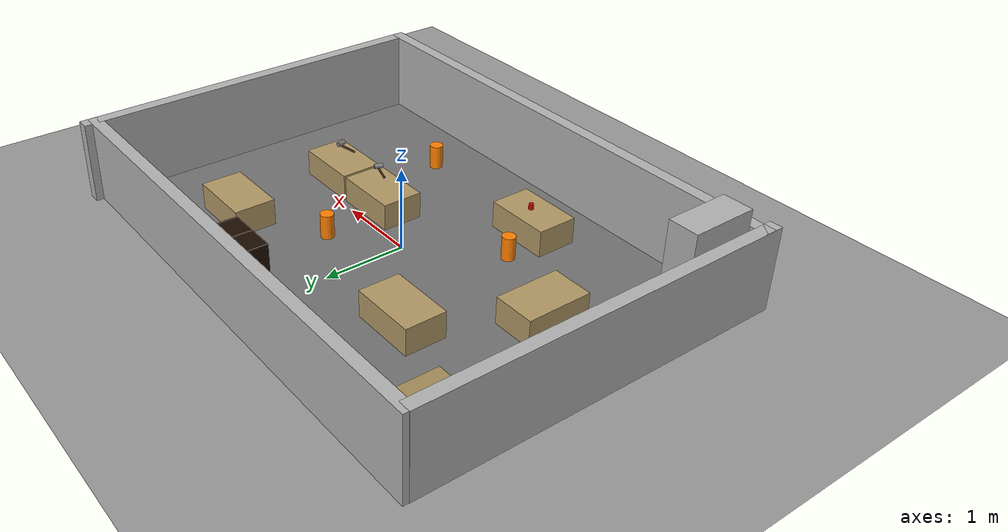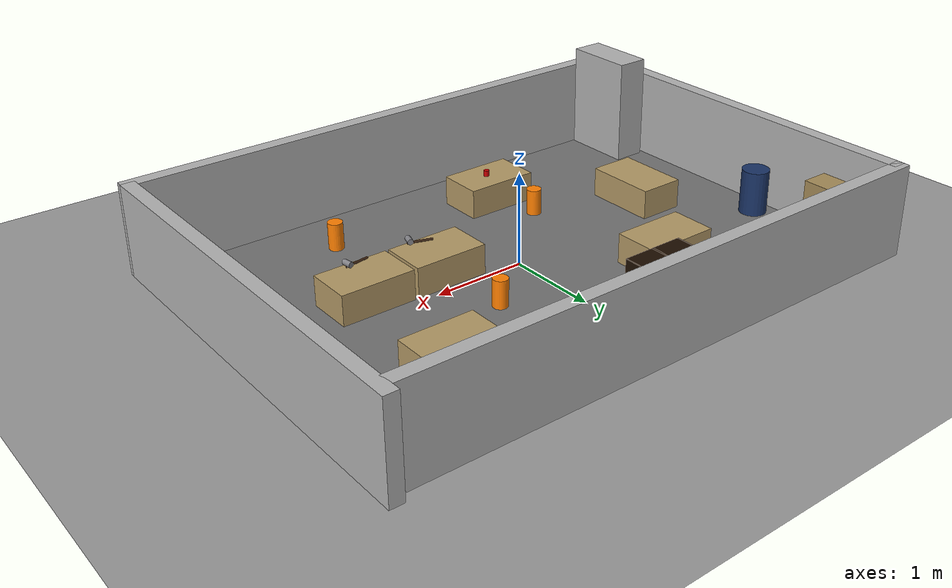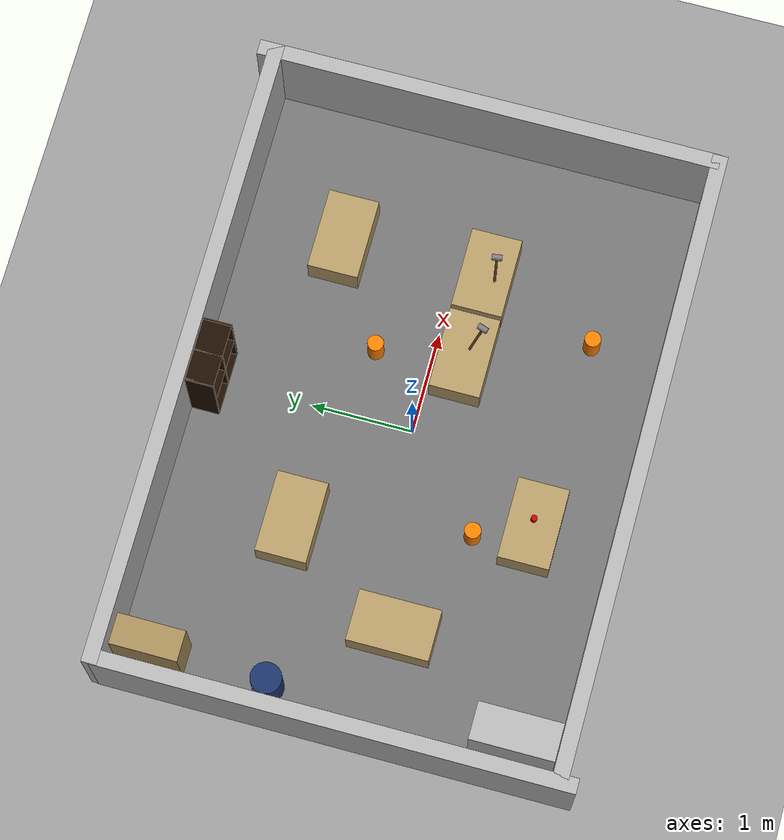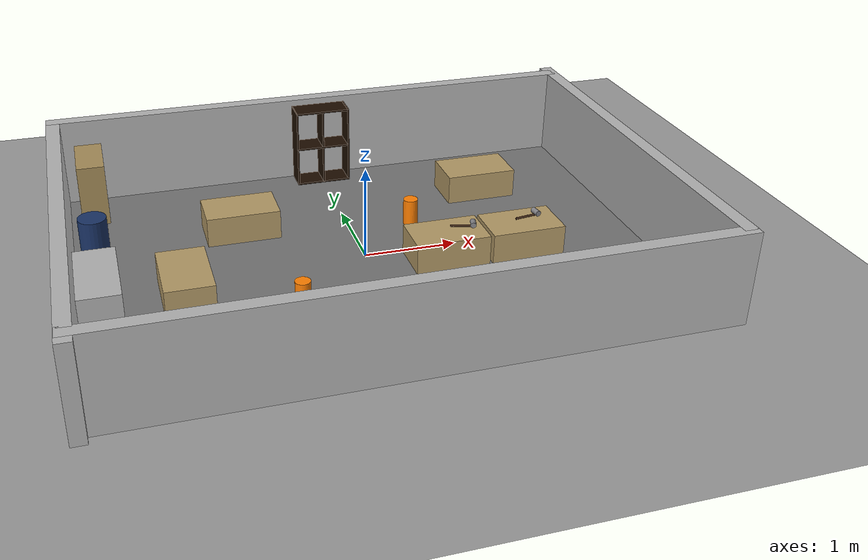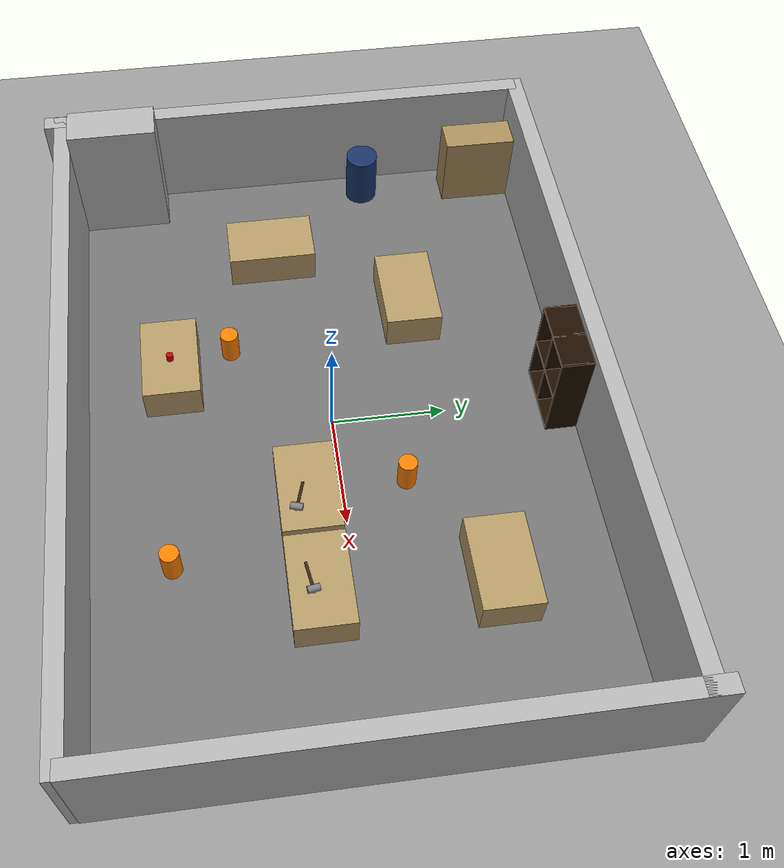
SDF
<?xml version="1.0" ?>
<sdf version="1.5">
  <world name="workshop">
     <physics name='default_physics' default='0' type='ode'>
      <gravity>0 0 -9.8066</gravity>
      <ode>
        <solver>
          <type>quick</type>
          <iters>10</iters>
          <sor>1.3</sor>
          <use_dynamic_moi_rescaling>0</use_dynamic_moi_rescaling>
        </solver>
        <constraints>
          <cfm>0</cfm>
          <erp>0.2</erp>
          <contact_max_correcting_vel>100</contact_max_correcting_vel>
          <contact_surface_layer>0.001</contact_surface_layer>
        </constraints>
      </ode>
      <max_step_size>0.004</max_step_size>
      <real_time_factor>1</real_time_factor>
      <real_time_update_rate>250</real_time_update_rate>
      <magnetic_field>6.0e-6 2.3e-5 -4.2e-5</magnetic_field>
    </physics>

    <light type="directional" name="sun">
      <cast_shadows>false</cast_shadows>
      <pose>0 0 10 0 0 0</pose>
      <diffuse>0.8 0.8 0.8 1</diffuse>
      <specular>0.2 0.2 0.2 1</specular>
      <attenuation>
        <range>1000</range>
        <constant>0.9</constant>
        <linear>0.01</linear>
        <quadratic>0.001</quadratic>
      </attenuation>
      <direction>-0.5 0.1 -0.9</direction>
    </light>

    <!-- Ground plane (primitive replacement of model://ground_plane_residential) -->
    <model name='ground_plane_residential'>
      <static>1</static>
      <link name='link'>
        <collision name='collision'>
          <geometry>
            <plane>
              <normal>0 0 1</normal>
              <size>50 50</size>
            </plane>
          </geometry>
          <surface>
            <friction>
              <ode>
                <mu>1</mu>
                <mu2>1</mu2>
              </ode>
            </friction>
          </surface>
        </collision>
        <visual name='visual'>
          <geometry>
            <plane>
              <normal>0 0 1</normal>
              <size>50 50</size>
            </plane>
          </geometry>
          <material>
            <ambient>0.6 0.6 0.6 1</ambient>
            <diffuse>0.6 0.6 0.6 1</diffuse>
            <specular>0.05 0.05 0.05 1</specular>
          </material>
        </visual>
      </link>
    </model>

    <!-- Workshop environment (primitive replacement of model://Workshop) -->
    <model name='Workshop'>
      <static>1</static>
      <pose>0 0 0 0 0 0</pose>
      <link name='structure'>
        <!-- floor: approx 6.1 x 4.38 -->
        <collision name='floor_col'>
          <pose>0 0 0.0065 0 0 0</pose>
          <geometry>
            <box>
              <size>6.099 4.38 0.013</size>
            </box>
          </geometry>
        </collision>
        <visual name='floor_vis'>
          <pose>0 0 0.0065 0 0 0</pose>
          <geometry>
            <box>
              <size>6.099 4.38 0.013</size>
            </box>
          </geometry>
          <material>
            <ambient>0.35 0.35 0.35 1</ambient>
            <diffuse>0.45 0.45 0.45 1</diffuse>
            <specular>0.05 0.05 0.05 1</specular>
          </material>
        </visual>

        <!-- walls: simple perimeter, thickness 0.15, height 1.0 -->
        <collision name='wall_n_col'>
          <pose>0 2.19 0.5 0 0 0</pose>
          <geometry>
            <box>
              <size>6.26 0.15 1</size>
            </box>
          </geometry>
        </collision>
        <visual name='wall_n_vis'>
          <pose>0 2.19 0.5 0 0 0</pose>
          <geometry>
            <box>
              <size>6.26 0.15 1</size>
            </box>
          </geometry>
          <material>
            <ambient>0.7 0.7 0.7 1</ambient>
            <diffuse>0.7 0.7 0.7 1</diffuse>
            <specular>0.1 0.1 0.1 1</specular>
          </material>
        </visual>

        <collision name='wall_s_col'>
          <pose>-0.8 -2.19 0.5 0 0 0</pose>
          <geometry>
            <box>
              <size>4.521 0.15 1</size>
            </box>
          </geometry>
        </collision>
        <visual name='wall_s_vis'>
          <pose>0 -2.19 0.5 0 0 0</pose>
          <geometry>
            <box>
              <size>6.26 0.15 1</size>
            </box>
          </geometry>
          <material>
            <ambient>0.7 0.7 0.7 1</ambient>
            <diffuse>0.7 0.7 0.7 1</diffuse>
            <specular>0.1 0.1 0.1 1</specular>
          </material>
        </visual>

        <collision name='wall_e_col'>
          <pose>3.05 0.22 0.5 0 0 -1.5708</pose>
          <geometry>
            <box>
              <size>4.199944 0.15 1</size>
            </box>
          </geometry>
        </collision>
        <visual name='wall_e_vis'>
          <pose>3.06 0.08 0.5 0 0 -1.5708</pose>
          <geometry>
            <box>
              <size>4.557060 0.15 1</size>
            </box>
          </geometry>
          <material>
            <ambient>0.7 0.7 0.7 1</ambient>
            <diffuse>0.7 0.7 0.7 1</diffuse>
            <specular>0.1 0.1 0.1 1</specular>
          </material>
        </visual>

        <collision name='wall_w_col'>
          <pose>-3.06 -0.08 0.5 0 0 -1.5708</pose>
          <geometry>
            <box>
              <size>4.557060 0.15 1</size>
            </box>
          </geometry>
        </collision>
        <visual name='wall_w_vis'>
          <pose>-3.06 -0.08 0.5 0 0 -1.5708</pose>
          <geometry>
            <box>
              <size>4.557060 0.15 1</size>
            </box>
          </geometry>
          <material>
            <ambient>0.7 0.7 0.7 1</ambient>
            <diffuse>0.7 0.7 0.7 1</diffuse>
            <specular>0.1 0.1 0.1 1</specular>
          </material>
        </visual>
      </link>
    </model>

    <!-- Box primitives: dimensions inferred from name (cm -> m), height=0.15 -->
    <model name='Box_15x30'>
      <static>1</static>
      <pose>-1.936710 -0.343286 0.013 0 0 -1.57</pose>
      <link name='link'>
        <collision name='col'>
          <pose>0 0 0.075 0 0 0</pose>
          <geometry><box><size>0.8 0.5 0.5</size></box></geometry>
        </collision>
        <visual name='vis'>
          <pose>0 0 0.075 0 0 0</pose>
          <geometry><box><size>0.8 0.5 0.5</size></box></geometry>
          <material><ambient>0.6 0.5 0.35 1</ambient><diffuse>0.7 0.6 0.4 1</diffuse><specular>0.05 0.05 0.05 1</specular></material>
        </visual>
      </link>
    </model>

    <model name='Box_33x15_1'>
      <static>1</static>
      <pose>1.636 -0.3 0.013 0 0 0</pose>
      <link name='link'>
        <collision name='col'>
          <pose>0 0 0.075 0 0 0</pose>
          <geometry><box><size>0.8 0.5 0.5</size></box></geometry>
        </collision>
        <visual name='vis'>
          <pose>0 0 0.075 0 0 0</pose>
          <geometry><box><size>0.8 0.5 0.5</size></box></geometry>
          <material><ambient>0.6 0.5 0.35 1</ambient><diffuse>0.7 0.6 0.4 1</diffuse><specular>0.05 0.05 0.05 1</specular></material>
        </visual>
      </link>
    </model>

    <model name='Box_33x15_2'>
      <static>1</static>
      <pose>0.8 -0.3 0.013 0 0 0</pose>
      <link name='link'>
        <collision name='col'>
          <pose>0 0 0.075 0 0 0</pose>
          <geometry><box><size>0.8 0.5 0.5</size></box></geometry>
        </collision>
        <visual name='vis'>
          <pose>0 0 0.075 0 0 0</pose>
          <geometry><box><size>0.8 0.5 0.5</size></box></geometry>
          <material><ambient>0.6 0.5 0.35 1</ambient><diffuse>0.7 0.6 0.4 1</diffuse><specular>0.05 0.05 0.05 1</specular></material>
        </visual>
      </link>
    </model>

    <model name='Box_36x15W'>
      <static>1</static>
      <pose>1.658951 1.141109 0.013 0 0 0</pose>
      <link name='link'>
        <collision name='col'>
          <pose>0 0 0.075 0 0 0</pose>
          <geometry><box><size>0.8 0.5 0.5</size></box></geometry>
        </collision>
        <visual name='vis'>
          <pose>0 0 0.075 0 0 0</pose>
          <geometry><box><size>0.8 0.5 0.5</size></box></geometry>
          <material><ambient>0.6 0.5 0.35 1</ambient><diffuse>0.7 0.6 0.4 1</diffuse><specular>0.05 0.05 0.05 1</specular></material>
        </visual>
      </link>
    </model>

    <model name='Box_24x15M'>
      <static>1</static>
      <pose>-0.653226 -1.356719 0.013 0 0 0</pose>
      <link name='link'>
        <collision name='col'>
          <pose>0 0 0.075 0 0 0</pose>
          <geometry><box><size>0.8 0.5 0.5</size></box></geometry>
        </collision>
        <visual name='vis'>
          <pose>0 0 0.075 0 0 0</pose>
          <geometry><box><size>0.8 0.5 0.5</size></box></geometry>
          <material><ambient>0.6 0.5 0.35 1</ambient><diffuse>0.7 0.6 0.4 1</diffuse><specular>0.05 0.05 0.05 1</specular></material>
        </visual>
      </link>
    </model>

    <model name='Box_24x15W'>
      <static>1</static>
      <pose>-1.184366 0.857670 0.013 0 0 0</pose>
      <link name='link'>
        <collision name='col'>
          <pose>0 0 0.075 0 0 0</pose>
          <geometry><box><size>0.8 0.5 0.5</size></box></geometry>
        </collision>
        <visual name='vis'>
          <pose>0 0 0.075 0 0 0</pose>
          <geometry><box><size>0.8 0.5 0.5</size></box></geometry>
          <material><ambient>0.6 0.5 0.35 1</ambient><diffuse>0.7 0.6 0.4 1</diffuse><specular>0.05 0.05 0.05 1</specular></material>
        </visual>
      </link>
    </model>

    <!-- 6 Cube Storage (primitive shelf with 6 compartments) -->
    <model name='6_Cube_StorageE'>
      <static>1</static>
      <pose>0 1.986729 0.013002 0 0 3.14</pose>
      <link name='shelf'>
        <!-- dims: width=0.616 depth=0.296 height=0.915, thickness=0.02 -->
        <collision name='back_col'>
          <pose>0 -0.148 0.4575 0 0 0</pose>
          <geometry><box><size>0.616 0.02 0.915</size></box></geometry>
        </collision>
        <visual name='back_vis'>
          <pose>0 -0.148 0.4575 0 0 0</pose>
          <geometry><box><size>0.616 0.02 0.915</size></box></geometry>
          <material><ambient>0.11 0.05 0 1</ambient><diffuse>0.11 0.05 0 1</diffuse><specular>0.05 0.05 0.05 1</specular></material>
        </visual>

        <collision name='left_side_col'>
          <pose>-0.308 0 0.4575 0 0 0</pose>
          <geometry><box><size>0.02 0.296 0.915</size></box></geometry>
        </collision>
        <visual name='left_side_vis'>
          <pose>-0.308 0 0.4575 0 0 0</pose>
          <geometry><box><size>0.02 0.296 0.915</size></box></geometry>
          <material><ambient>0.11 0.05 0 1</ambient><diffuse>0.11 0.05 0 1</diffuse><specular>0.05 0.05 0.05 1</specular></material>
        </visual>

        <collision name='right_side_col'>
          <pose>0.308 0 0.4575 0 0 0</pose>
          <geometry><box><size>0.02 0.296 0.915</size></box></geometry>
        </collision>
        <visual name='right_side_vis'>
          <pose>0.308 0 0.4575 0 0 0</pose>
          <geometry><box><size>0.02 0.296 0.915</size></box></geometry>
          <material><ambient>0.11 0.05 0 1</ambient><diffuse>0.11 0.05 0 1</diffuse><specular>0.05 0.05 0.05 1</specular></material>
        </visual>

        <collision name='bottom_col'>
          <pose>0 0 0.01 0 0 0</pose>
          <geometry><box><size>0.616 0.296 0.02</size></box></geometry>
        </collision>
        <visual name='bottom_vis'>
          <pose>0 0 0.01 0 0 0</pose>
          <geometry><box><size>0.616 0.296 0.02</size></box></geometry>
          <material><ambient>0.11 0.05 0 1</ambient><diffuse>0.11 0.05 0 1</diffuse><specular>0.05 0.05 0.05 1</specular></material>
        </visual>

        <collision name='mid_col'>
          <pose>0 0 0.4575 0 0 0</pose>
          <geometry><box><size>0.616 0.296 0.02</size></box></geometry>
        </collision>
        <visual name='mid_vis'>
          <pose>0 0 0.4575 0 0 0</pose>
          <geometry><box><size>0.616 0.296 0.02</size></box></geometry>
          <material><ambient>0.11 0.05 0 1</ambient><diffuse>0.11 0.05 0 1</diffuse><specular>0.05 0.05 0.05 1</specular></material>
        </visual>

        <collision name='top_col'>
          <pose>0 0 0.905 0 0 0</pose>
          <geometry><box><size>0.616 0.296 0.02</size></box></geometry>
        </collision>
        <visual name='top_vis'>
          <pose>0 0 0.905 0 0 0</pose>
          <geometry><box><size>0.616 0.296 0.02</size></box></geometry>
          <material><ambient>0.11 0.05 0 1</ambient><diffuse>0.11 0.05 0 1</diffuse><specular>0.05 0.05 0.05 1</specular></material>
        </visual>

        <!-- center divider (2 columns) -->
        <collision name='divider_col'>
          <pose>0 0 0.4575 0 0 0</pose>
          <geometry><box><size>0.02 0.296 0.915</size></box></geometry>
        </collision>
        <visual name='divider_vis'>
          <pose>0 0 0.4575 0 0 0</pose>
          <geometry><box><size>0.02 0.296 0.915</size></box></geometry>
          <material><ambient>0.11 0.05 0 1</ambient><diffuse>0.11 0.05 0 1</diffuse><specular>0.05 0.05 0.05 1</specular></material>
        </visual>
      </link>
    </model>

    <!-- Wire shelf (primitive replacement) -->
    <model name='Wire_Shelf'>
      <static>1</static>
      <pose>-2.755265 -1.706117 0.001995 0 0 -1.570</pose>
      <link name='link'>
        <collision name='col'>
          <pose>0 0 0.6 0 0 0</pose>
          <geometry><box><size>0.8 0.36 1.2</size></box></geometry>
        </collision>
        <visual name='vis'>
          <pose>0 0 0.6 0 0 0</pose>
          <geometry><box><size>0.8 0.36 1.2</size></box></geometry>
          <material><ambient>0.7 0.7 0.7 1</ambient><diffuse>0.7 0.7 0.7 1</diffuse><specular>0.2 0.2 0.2 1</specular></material>
        </visual>
      </link>
    </model>

    <!-- Wall cabinet (primitive replacement) -->
    <model name='Wall_Cabinet_Coin_24x30W'>
      <static>1</static>
      <pose>-2.710050 1.858030 0.013 0 0 -1.574973</pose>
      <link name='link'>
        <collision name='col'>
          <pose>0 0 0.35 0 0 0</pose>
          <geometry><box><size>0.8 0.3 0.7</size></box></geometry>
        </collision>
        <visual name='vis'>
          <pose>0 0 0.35 0 0 0</pose>
          <geometry><box><size>0.8 0.3 0.7</size></box></geometry>
          <material><ambient>0.55 0.45 0.3 1</ambient><diffuse>0.65 0.55 0.35 1</diffuse><specular>0.05 0.05 0.05 1</specular></material>
        </visual>
      </link>
    </model>

    <model name='coca_cola'>
      <static>0</static>
      <pose>-0.62 -1.35 0.342315 -0.000022 -0.000010 0.023819</pose>
      <link name='link'>
        <inertial>
          <mass>0.35</mass>
          <inertia>
            <ixx>0.0005</ixx>
            <ixy>0</ixy>
            <ixz>0</ixz>
            <iyy>0.0005</iyy>
            <iyz>0</iyz>
            <izz>0.0003</izz>
          </inertia>
        </inertial>
        <collision name='col'>
          <geometry><cylinder><radius>0.03</radius><length>0.12</length></cylinder></geometry>
        </collision>
        <visual name='vis'>
          <geometry><cylinder><radius>0.03</radius><length>0.12</length></cylinder></geometry>
          <material><ambient>0.5 0 0 1</ambient><diffuse>0.8 0 0 1</diffuse><specular>0.05 0.05 0.05 1</specular></material>
        </visual>
      </link>
    </model>

    <model name='construction_cone_small_1'>
      <static>1</static>
      <pose>0.68 0.55 0.015644 0.000314 -0.010301 0.004754</pose>
      <link name='link'>
        <collision name='col'>
          <pose>0 0 0.15 0 0 0</pose>
          <geometry><cylinder><radius>0.08</radius><length>0.30</length></cylinder></geometry>
        </collision>
        <visual name='vis'>
          <pose>0 0 0.15 0 0 0</pose>
          <geometry><cylinder><radius>0.08</radius><length>0.30</length></cylinder></geometry>
          <material><ambient>0.8 0.4 0 1</ambient><diffuse>1 0.5 0 1</diffuse><specular>0.05 0.05 0.05 1</specular></material>
        </visual>
      </link>
    </model>

    <model name='construction_cone_small_2'>
      <static>1</static>
      <pose>1.26 -1.45 0.01299 0 0 0.000034</pose>
      <link name='link'>
        <collision name='col'>
          <pose>0 0 0.15 0 0 0</pose>
          <geometry><cylinder><radius>0.08</radius><length>0.30</length></cylinder></geometry>
        </collision>
        <visual name='vis'>
          <pose>0 0 0.15 0 0 0</pose>
          <geometry><cylinder><radius>0.08</radius><length>0.30</length></cylinder></geometry>
          <material><ambient>0.8 0.4 0 1</ambient><diffuse>1 0.5 0 1</diffuse><specular>0.05 0.05 0.05 1</specular></material>
        </visual>
      </link>
    </model>

    <model name='construction_cone_small_3'>
      <static>1</static>
      <pose>-0.86 -0.82 0.00 0 0 0</pose>
      <link name='link'>
        <collision name='col'>
          <pose>0 0 0.15 0 0 0</pose>
          <geometry><cylinder><radius>0.08</radius><length>0.30</length></cylinder></geometry>
        </collision>
        <visual name='vis'>
          <pose>0 0 0.15 0 0 0</pose>
          <geometry><cylinder><radius>0.08</radius><length>0.30</length></cylinder></geometry>
          <material><ambient>0.8 0.4 0 1</ambient><diffuse>1 0.5 0 1</diffuse><specular>0.05 0.05 0.05 1</specular></material>
        </visual>
      </link>
    </model>

    <model name='trash_bin'>
      <static>1</static>
      <pose>-2.756142 0.652103 0.012998 0 0.000012 -0.001068</pose>
      <link name='link'>
        <collision name='col'>
          <pose>0 0 0.25 0 0 0</pose>
          <geometry><cylinder><radius>0.15</radius><length>0.5</length></cylinder></geometry>
        </collision>
        <visual name='vis'>
          <pose>0 0 0.25 0 0 0</pose>
          <geometry><cylinder><radius>0.15</radius><length>0.5</length></cylinder></geometry>
          <material><ambient>0.05 0.1 0.2 1</ambient><diffuse>0.1 0.2 0.4 1</diffuse><specular>0.1 0.1 0.1 1</specular></material>
        </visual>
      </link>
    </model>

    <!-- Hammers: two perpendicular cylinders, pose preserved -->
    <model name='hammer_pein_1'>
      <static>0</static>
      <pose>1.66 -0.38 0.425198 0 0 0.153326</pose>
      <link name='link'>
        <inertial>
          <mass>0.5</mass>
          <inertia>
            <ixx>0.002</ixx>
            <ixy>0</ixy>
            <ixz>0</ixz>
            <iyy>0.002</iyy>
            <iyz>0</iyz>
            <izz>0.001</izz>
          </inertia>
        </inertial>
        <!-- handle along X -->
        <collision name='handle_col'>
          <pose>0 0 0 0 1.5708 0</pose>
          <geometry><cylinder><radius>0.012</radius><length>0.26</length></cylinder></geometry>
        </collision>
        <visual name='handle_vis'>
          <pose>0 0 0 0 1.5708 0</pose>
          <geometry><cylinder><radius>0.012</radius><length>0.26</length></cylinder></geometry>
          <material><ambient>0.2 0.12 0.05 1</ambient><diffuse>0.25 0.15 0.08 1</diffuse><specular>0.02 0.02 0.02 1</specular></material>
        </visual>
        <!-- head along Y -->
        <collision name='head_col'>
          <pose>0.11 0 0.03 1.5708 0 0</pose>
          <geometry><cylinder><radius>0.03</radius><length>0.10</length></cylinder></geometry>
        </collision>
        <visual name='head_vis'>
          <pose>0.11 0 0.03 1.5708 0 0</pose>
          <geometry><cylinder><radius>0.03</radius><length>0.10</length></cylinder></geometry>
          <material><ambient>0.3 0.3 0.32 1</ambient><diffuse>0.5 0.5 0.52 1</diffuse><specular>0.2 0.2 0.2 1</specular></material>
        </visual>
      </link>
    </model>

    <model name='hammer_pein_2'>
      <static>0</static>
      <pose>0.94 -0.38 0.416818 0 0 -0.310473</pose>
      <link name='link'>
        <inertial>
          <mass>0.5</mass>
          <inertia>
            <ixx>0.002</ixx>
            <ixy>0</ixy>
            <ixz>0</ixz>
            <iyy>0.002</iyy>
            <iyz>0</iyz>
            <izz>0.001</izz>
          </inertia>
        </inertial>
        <collision name='handle_col'>
          <pose>0 0 0 0 1.5708 0</pose>
          <geometry><cylinder><radius>0.012</radius><length>0.26</length></cylinder></geometry>
        </collision>
        <visual name='handle_vis'>
          <pose>0 0 0 0 1.5708 0</pose>
          <geometry><cylinder><radius>0.012</radius><length>0.26</length></cylinder></geometry>
          <material><ambient>0.2 0.12 0.05 1</ambient><diffuse>0.25 0.15 0.08 1</diffuse><specular>0.02 0.02 0.02 1</specular></material>
        </visual>
        <collision name='head_col'>
          <pose>0.11 0 0.03 1.5708 0 0</pose>
          <geometry><cylinder><radius>0.03</radius><length>0.10</length></cylinder></geometry>
        </collision>
        <visual name='head_vis'>
          <pose>0.11 0 0.03 1.5708 0 0</pose>
          <geometry><cylinder><radius>0.03</radius><length>0.10</length></cylinder></geometry>
          <material><ambient>0.3 0.3 0.32 1</ambient><diffuse>0.5 0.5 0.52 1</diffuse><specular>0.2 0.2 0.2 1</specular></material>
        </visual>
      </link>
    </model>
  <plugin
    filename="gz-sim-physics-system"
    name="gz::sim::systems::Physics">
  </plugin>
  <plugin
    filename="gz-sim-user-commands-system"
    name="gz::sim::systems::UserCommands">
  </plugin>
    <plugin
    filename="gz-sim-scene-broadcaster-system"
    name="gz::sim::systems::SceneBroadcaster">
  </plugin>
  </world>
</sdf>
